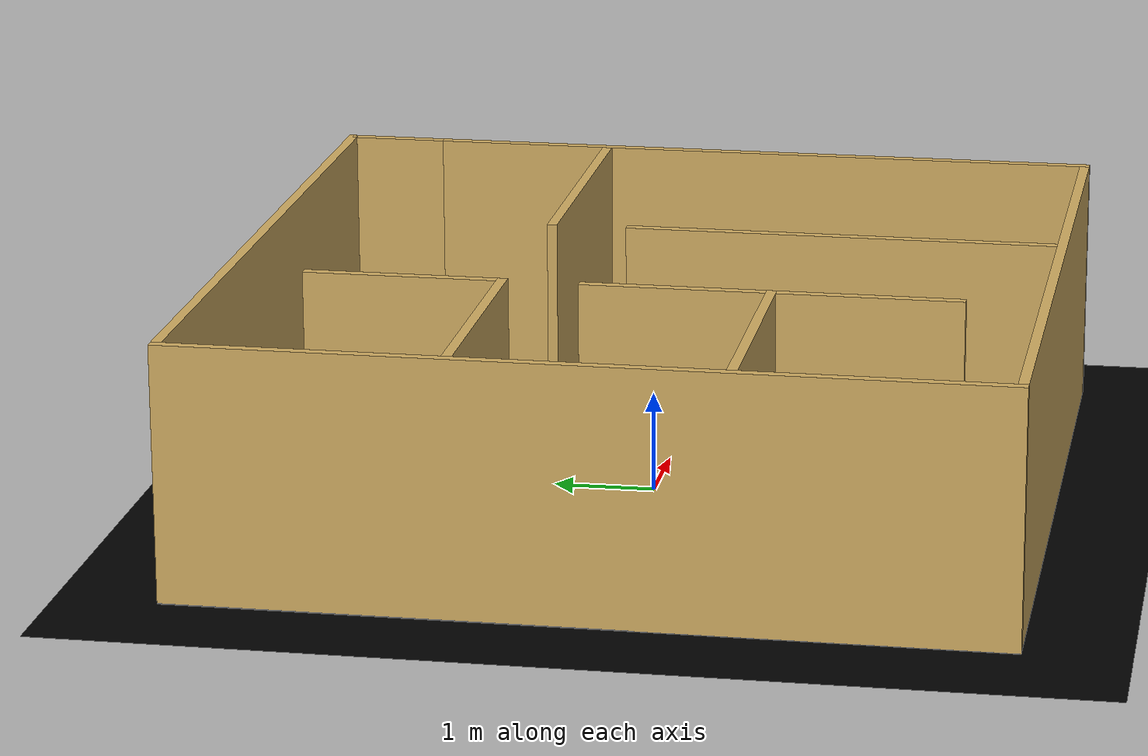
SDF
<sdf version="1.4">
 <world name="default">
  <physics name="1ms" type="ignored">
   <max_step_size>0.001</max_step_size>
   <real_time_factor>1.0</real_time_factor>
  </physics>
  <plugin filename="gz-sim-physics-system" name="gz::sim::systems::Physics"/>
  <plugin filename="gz-sim-user-commands-system" name="gz::sim::systems::UserCommands"/>
  <plugin filename="gz-sim-scene-broadcaster-system" name="gz::sim::systems::SceneBroadcaster"/>
  <plugin filename="gz-sim-sensors-system" name="gz::sim::systems::Sensors">
   <render_engine>ogre2</render_engine>
  </plugin>
  <scene><ambient>0.4 0.4 0.4 1</ambient><background>0.7 0.7 0.7 1</background><shadows>false</shadows></scene>
  <include><uri>model://office_floor</uri></include>
  <include><uri>model://office_model</uri></include>
  <include><name>goal_1</name><uri>model://goal_marker_5</uri><pose>2.81 -2.73 0.01 0 0 0</pose></include>
  <include><name>goal_2</name><uri>model://goal_marker_5</uri><pose>0 2.25 0.01 0 0 0</pose></include>
  <include><name>goal_3</name><uri>model://goal_marker_5</uri><pose>-3.40 -2.40 0.01 0 0 0</pose></include>
  <include><name>goal_4</name><uri>model://goal_marker_5</uri><pose>-2.05 -0.7 0.01 0 0 0</pose></include>
  <model name="cube_1">
   <static>true</static>
   <pose>3.95 3.45 1.25 0 0 0</pose>
   <link name="link">
    <collision name="collision"><geometry><box><size>1 0.1 1</size></box></geometry></collision>
    <visual name="visual">
     <geometry><box><size>0.1 1 2.5</size></box></geometry>
     <material><ambient>0.824 0.682 0.384 1</ambient><diffuse>0.824 0.682 0.384 1</diffuse></material>
    </visual>
   </link>
  </model>
 </world>
</sdf>

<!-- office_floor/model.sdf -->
<sdf version="1.5">
        <model name="puzzlebot_base">
            <static>true</static>
        <link name="link">
            <pose>0 0 0.0 0 0 1.5708 </pose>
            <collision name="collision">
                <geometry>
                <plane>
                    <normal>0 0 1</normal>
                    <size>10.0 10.0</size>
                </plane>
                </geometry>
                <surface>
                <contact>
                    <collide_bitmask>0xffff</collide_bitmask>
                    </contact>
                        <friction>
                        <ode>
                            <mu>100</mu>
                            <mu2>50</mu2>
                        </ode>
                        </friction>
                </surface>
            </collision>
            <visual name="visual">
                <pose>0 0 -0.001 0 0 0</pose>
                    <cast_shadows>false</cast_shadows>
                    <geometry>
                    <plane>
                        <normal>0 0 1</normal>
                        <size>10.0 10.0</size>
                    </plane>
                    </geometry>
                        <material>
                            <ambient>0 0 0 1</ambient>
                            <diffuse>0 0 0 1</diffuse>
                            <specular>0 0 0 1</specular>
                        </material>
                </visual>

                <visual name="mcr2_logo">
                <pose>0 0 0.0 0 0 0</pose>
                <cast_shadows>false</cast_shadows>
                <geometry>
                    <plane>
                    <normal>0 0 1</normal>
                    <size>8.0 8.0</size>
                    </plane>
                </geometry>
                        <material>
                            <ambient>1 1 1 1</ambient>
                            <diffuse>1 1 1 1</diffuse>
                            <specular>1 1 1 1</specular>
                            <pbr>
                                <metal>
                                <albedo_map>model://office_floor/materials/textures/backroom.jpg</albedo_map>
                                </metal>
                            </pbr>
                        </material>
                </visual>
            </link>

        </model>
    </sdf>

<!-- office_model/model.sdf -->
<sdf version="1.5">
  <model name='office'>

    <static>1</static>

    <link name='Wall_10'>
        <pose>-3.950 0.0 1.25 0.0 0.0 0.0</pose>

        <visual name='Wall_10_Visual'>
            <pose>0 0 0 0 -0 0</pose>
            <geometry>
                <box>
                    <size>0.1 8.0 2.5</size>
                </box>
            </geometry>
              <material>
                <ambient>0 0 0 1</ambient>
                <diffuse>0.824 0.682 0.384 1</diffuse>
                <specular>0 0 0 1</specular>
              </material>
        <cast_shadows>0</cast_shadows>
      </visual>

      <collision name='Wall_10_Collision'>
        <max_contacts>10</max_contacts>
        <pose>0 0 0.0 0 0 0</pose>
        <geometry>
          <box>
            <size>0.1 8.0 2.5</size>
          </box>
        </geometry>
        <surface>
          <friction>
            <ode>
              <mu>1</mu>
              <mu2>1</mu2>
              <fdir1>0 0 0</fdir1>
              <slip1>0</slip1>
              <slip2>0</slip2>
            </ode>
          </friction>
          <bounce>
            <restitution_coefficient>0</restitution_coefficient>
            <threshold>1e+06</threshold>
          </bounce>
          <contact>
            <collide_without_contact>0</collide_without_contact>
            <collide_without_contact_bitmask>1</collide_without_contact_bitmask>
            <collide_bitmask>1</collide_bitmask>
            <ode>
              <soft_cfm>0</soft_cfm>
              <soft_erp>0.2</soft_erp>
              <kp>1e+13</kp>
              <kd>1</kd>
              <max_vel>0.01</max_vel>
              <min_depth>0</min_depth>
            </ode>
            <bullet>
              <split_impulse>1</split_impulse>
              <split_impulse_penetration_threshold>-0.01</split_impulse_penetration_threshold>
              <soft_cfm>0</soft_cfm>
              <soft_erp>0.2</soft_erp>
              <kp>1e+13</kp>
              <kd>1</kd>
            </bullet>
          </contact>
        </surface>
      </collision>
    </link>

    <link name='Wall_20'>
          <pose>3.950 -0.525 1.25 0.0 0.0 0.0</pose>

          <visual name='Wall_20_Visual'>
              <pose>0 0 0 0 -0 0</pose>
              <geometry>
                  <box>
                      <size>0.1 6.950 2.5</size>
                  </box>
              </geometry>
              <material>
                <ambient>0 0 0 1</ambient>
                <diffuse>0.824 0.682 0.384 1</diffuse>
                <specular>0 0 0 1</specular>
              </material>
          <cast_shadows>0</cast_shadows>
        </visual>

        <collision name='Wall_20_Collision'>
          <max_contacts>10</max_contacts>
          <pose>0 0 0.0 0 0 0</pose>
          <geometry>
            <box>
              <size>0.1 6.950 2.5</size>
            </box>
          </geometry>
          <surface>
            <friction>
              <ode>
                <mu>1</mu>
                <mu2>1</mu2>
                <fdir1>0 0 0</fdir1>
                <slip1>0</slip1>
                <slip2>0</slip2>
              </ode>
            </friction>
            <bounce>
              <restitution_coefficient>0</restitution_coefficient>
              <threshold>1e+06</threshold>
            </bounce>
            <contact>
              <collide_without_contact>0</collide_without_contact>
              <collide_without_contact_bitmask>1</collide_without_contact_bitmask>
              <collide_bitmask>1</collide_bitmask>
              <ode>
                <soft_cfm>0</soft_cfm>
                <soft_erp>0.2</soft_erp>
                <kp>1e+13</kp>
                <kd>1</kd>
                <max_vel>0.01</max_vel>
                <min_depth>0</min_depth>
              </ode>
              <bullet>
                <split_impulse>1</split_impulse>
                <split_impulse_penetration_threshold>-0.01</split_impulse_penetration_threshold>
                <soft_cfm>0</soft_cfm>
                <soft_erp>0.2</soft_erp>
                <kp>1e+13</kp>
                <kd>1</kd>
              </bullet>
            </contact>
          </surface>
        </collision>
    </link>

    <link name='Wall_30'>
        <pose>0.0 -3.950 1.25 0.0 0.0 0.0</pose>

        <visual name='Wall_30_Visual'>
            <pose>0 0 0 0 -0 0</pose>
            <geometry>
                <box>
                    <size>7.8 0.1 2.5</size>
                </box>
            </geometry>
              <material>
                <ambient>0 0 0 1</ambient>
                <diffuse>0.824 0.682 0.384 1</diffuse>
                <specular>0 0 0 1</specular>
              </material>
        <cast_shadows>0</cast_shadows>
      </visual>

      <collision name='Wall_30_Collision'>
        <max_contacts>10</max_contacts>
        <pose>0 0 0.0 0 0 0</pose>
        <geometry>
          <box>
            <size>7.8 0.1 2.5</size>
          </box>
        </geometry>
        <surface>
          <friction>
            <ode>
              <mu>1</mu>
              <mu2>1</mu2>
              <fdir1>0 0 0</fdir1>
              <slip1>0</slip1>
              <slip2>0</slip2>
            </ode>
          </friction>
          <bounce>
            <restitution_coefficient>0</restitution_coefficient>
            <threshold>1e+06</threshold>
          </bounce>
          <contact>
            <collide_without_contact>0</collide_without_contact>
            <collide_without_contact_bitmask>1</collide_without_contact_bitmask>
            <collide_bitmask>1</collide_bitmask>
            <ode>
              <soft_cfm>0</soft_cfm>
              <soft_erp>0.2</soft_erp>
              <kp>1e+13</kp>
              <kd>1</kd>
              <max_vel>0.01</max_vel>
              <min_depth>0</min_depth>
            </ode>
            <bullet>
              <split_impulse>1</split_impulse>
              <split_impulse_penetration_threshold>-0.01</split_impulse_penetration_threshold>
              <soft_cfm>0</soft_cfm>
              <soft_erp>0.2</soft_erp>
              <kp>1e+13</kp>
              <kd>1</kd>
            </bullet>
          </contact>
        </surface>
      </collision>
    </link>

    <link name='Wall_40'>
        <pose>0.05 3.950 1.25 0.0 0.0 0.0</pose>

        <visual name='Wall_40_Visual'>
            <pose>0 0 0 0 -0 0</pose>
            <geometry>
                <box>
                    <size>7.9 0.1 2.5</size>
                </box>
            </geometry>
              <material>
                <ambient>0 0 0 1</ambient>
                <diffuse>0.824 0.682 0.384 1</diffuse>
                <specular>0 0 0 1</specular>
              </material>
        <cast_shadows>0</cast_shadows>
      </visual>

      <collision name='Wall_40_Collision'>
        <max_contacts>10</max_contacts>
        <pose>0 0 0.0 0 0 0</pose>
        <geometry>
          <box>
            <size>7.9 0.1 2.5</size>
          </box>
        </geometry>
        <surface>
          <friction>
            <ode>
              <mu>1</mu>
              <mu2>1</mu2>
              <fdir1>0 0 0</fdir1>
              <slip1>0</slip1>
              <slip2>0</slip2>
            </ode>
          </friction>
          <bounce>
            <restitution_coefficient>0</restitution_coefficient>
            <threshold>1e+06</threshold>
          </bounce>
          <contact>
            <collide_without_contact>0</collide_without_contact>
            <collide_without_contact_bitmask>1</collide_without_contact_bitmask>
            <collide_bitmask>1</collide_bitmask>
            <ode>
              <soft_cfm>0</soft_cfm>
              <soft_erp>0.2</soft_erp>
              <kp>1e+13</kp>
              <kd>1</kd>
              <max_vel>0.01</max_vel>
              <min_depth>0</min_depth>
            </ode>
            <bullet>
              <split_impulse>1</split_impulse>
              <split_impulse_penetration_threshold>-0.01</split_impulse_penetration_threshold>
              <soft_cfm>0</soft_cfm>
              <soft_erp>0.2</soft_erp>
              <kp>1e+13</kp>
              <kd>1</kd>
            </bullet>
          </contact>
        </surface>
      </collision>
    </link>

    <link name='Wall_50'>
        <pose>-1.35 -2.3 1.25 0.0 0.0 0.0</pose>

        <visual name='Wall_50_Visual'>
            <pose>0 0 0 0 -0 0</pose>
            <geometry>
                <box>
                    <size>0.1 1.8 2.5</size>
                </box>
            </geometry>
              <material>
                <ambient>0 0 0 1</ambient>
                <diffuse>0.824 0.682 0.384 1</diffuse>
                <specular>0 0 0 1</specular>
              </material>
        <cast_shadows>0</cast_shadows>
      </visual>

      <collision name='Wall_50_Collision'>
        <max_contacts>10</max_contacts>
        <pose>0 0 0.0 0 0 0</pose>
        <geometry>
          <box>
            <size>0.1 1.8 2.5</size>
          </box>
        </geometry>
        <surface>
          <friction>
            <ode>
              <mu>1</mu>
              <mu2>1</mu2>
              <fdir1>0 0 0</fdir1>
              <slip1>0</slip1>
              <slip2>0</slip2>
            </ode>
          </friction>
          <bounce>
            <restitution_coefficient>0</restitution_coefficient>
            <threshold>1e+06</threshold>
          </bounce>
          <contact>
            <collide_without_contact>0</collide_without_contact>
            <collide_without_contact_bitmask>1</collide_without_contact_bitmask>
            <collide_bitmask>1</collide_bitmask>
            <ode>
              <soft_cfm>0</soft_cfm>
              <soft_erp>0.2</soft_erp>
              <kp>1e+13</kp>
              <kd>1</kd>
              <max_vel>0.01</max_vel>
              <min_depth>0</min_depth>
            </ode>
            <bullet>
              <split_impulse>1</split_impulse>
              <split_impulse_penetration_threshold>-0.01</split_impulse_penetration_threshold>
              <soft_cfm>0</soft_cfm>
              <soft_erp>0.2</soft_erp>
              <kp>1e+13</kp>
              <kd>1</kd>
            </bullet>
          </contact>
        </surface>
      </collision>
    </link>

    <link name='Wall_60'>
        <pose>0.75 -1.75 1.25 0.0 0.0 0.0</pose>

        <visual name='Wall_60_Visual'>
            <pose>0 0 0 0 -0 0</pose>
            <geometry>
                <box>
                    <size>0.1 4.3 2.5</size>
                </box>
            </geometry>
              <material>
                <ambient>0 0 0 1</ambient>
                <diffuse>0.824 0.682 0.384 1</diffuse>
                <specular>0 0 0 1</specular>
              </material>
        <cast_shadows>0</cast_shadows>
      </visual>

      <collision name='Wall_60_Collision'>
        <max_contacts>10</max_contacts>
        <pose>0 0 0.0 0 0 0</pose>
        <geometry>
          <box>
            <size>0.1 4.3 2.5</size>
          </box>
        </geometry>
        <surface>
          <friction>
            <ode>
              <mu>1</mu>
              <mu2>1</mu2>
              <fdir1>0 0 0</fdir1>
              <slip1>0</slip1>
              <slip2>0</slip2>
            </ode>
          </friction>
          <bounce>
            <restitution_coefficient>0</restitution_coefficient>
            <threshold>1e+06</threshold>
          </bounce>
          <contact>
            <collide_without_contact>0</collide_without_contact>
            <collide_without_contact_bitmask>1</collide_without_contact_bitmask>
            <collide_bitmask>1</collide_bitmask>
            <ode>
              <soft_cfm>0</soft_cfm>
              <soft_erp>0.2</soft_erp>
              <kp>1e+13</kp>
              <kd>1</kd>
              <max_vel>0.01</max_vel>
              <min_depth>0</min_depth>
            </ode>
            <bullet>
              <split_impulse>1</split_impulse>
              <split_impulse_penetration_threshold>-0.01</split_impulse_penetration_threshold>
              <soft_cfm>0</soft_cfm>
              <soft_erp>0.2</soft_erp>
              <kp>1e+13</kp>
              <kd>1</kd>
            </bullet>
          </contact>
        </surface>
      </collision>
    </link>

    <link name='Wall_70'>
        <pose>-2.6 -1.35 1.25 0.0 0.0 0.0</pose>

        <visual name='Wall_70_Visual'>
            <pose>0 0 0 0 -0 0</pose>
            <geometry>
                <box>
                    <size>2.6 0.1 2.5</size>
                </box>
            </geometry>
              <material>
                <ambient>0 0 0 1</ambient>
                <diffuse>0.824 0.682 0.384 1</diffuse>
                <specular>0 0 0 1</specular>
              </material>
        <cast_shadows>0</cast_shadows>
      </visual>

      <collision name='Wall_70_Collision'>
        <max_contacts>10</max_contacts>
        <pose>0 0 0.0 0 0 0</pose>
        <geometry>
          <box>
            <size>2.6 0.1 2.5</size>
          </box>
        </geometry>
        <surface>
          <friction>
            <ode>
              <mu>1</mu>
              <mu2>1</mu2>
              <fdir1>0 0 0</fdir1>
              <slip1>0</slip1>
              <slip2>0</slip2>
            </ode>
          </friction>
          <bounce>
            <restitution_coefficient>0</restitution_coefficient>
            <threshold>1e+06</threshold>
          </bounce>
          <contact>
            <collide_without_contact>0</collide_without_contact>
            <collide_without_contact_bitmask>1</collide_without_contact_bitmask>
            <collide_bitmask>1</collide_bitmask>
            <ode>
              <soft_cfm>0</soft_cfm>
              <soft_erp>0.2</soft_erp>
              <kp>1e+13</kp>
              <kd>1</kd>
              <max_vel>0.01</max_vel>
              <min_depth>0</min_depth>
            </ode>
            <bullet>
              <split_impulse>1</split_impulse>
              <split_impulse_penetration_threshold>-0.01</split_impulse_penetration_threshold>
              <soft_cfm>0</soft_cfm>
              <soft_erp>0.2</soft_erp>
              <kp>1e+13</kp>
              <kd>1</kd>
            </bullet>
          </contact>
        </surface>
      </collision>
    </link>

    <link name='Wall_80'>
        <pose>-1.35 -0.4 1.25 0.0 0.0 0.0</pose>

        <visual name='Wall_80_Visual'>
            <pose>0 0 0 0 -0 0</pose>
            <geometry>
                <box>
                    <size>0.1 1.8 2.5</size>
                </box>
            </geometry>
              <material>
                <ambient>0 0 0 1</ambient>
                <diffuse>0.824 0.682 0.384 1</diffuse>
                <specular>0 0 0 1</specular>
              </material>
        <cast_shadows>0</cast_shadows>
      </visual>

      <collision name='Wall_80_Collision'>
        <max_contacts>10</max_contacts>
        <pose>0 0 0.0 0 0 0</pose>
        <geometry>
          <box>
            <size>0.1 1.8 2.5</size>
          </box>
        </geometry>
        <surface>
          <friction>
            <ode>
              <mu>1</mu>
              <mu2>1</mu2>
              <fdir1>0 0 0</fdir1>
              <slip1>0</slip1>
              <slip2>0</slip2>
            </ode>
          </friction>
          <bounce>
            <restitution_coefficient>0</restitution_coefficient>
            <threshold>1e+06</threshold>
          </bounce>
          <contact>
            <collide_without_contact>0</collide_without_contact>
            <collide_without_contact_bitmask>1</collide_without_contact_bitmask>
            <collide_bitmask>1</collide_bitmask>
            <ode>
              <soft_cfm>0</soft_cfm>
              <soft_erp>0.2</soft_erp>
              <kp>1e+13</kp>
              <kd>1</kd>
              <max_vel>0.01</max_vel>
              <min_depth>0</min_depth>
            </ode>
            <bullet>
              <split_impulse>1</split_impulse>
              <split_impulse_penetration_threshold>-0.01</split_impulse_penetration_threshold>
              <soft_cfm>0</soft_cfm>
              <soft_erp>0.2</soft_erp>
              <kp>1e+13</kp>
              <kd>1</kd>
            </bullet>
          </contact>
        </surface>
      </collision>
    </link>

    <link name='Wall_90'>
        <pose>2.3 1.15 1.25 0.0 0.0 0.0</pose>

        <visual name='Wall_90_Visual'>
            <pose>0 0 0 0 -0 0</pose>
            <geometry>
                <box>
                    <size>3.2 0.1 2.5</size>
                </box>
            </geometry>
              <material>
                <ambient>0 0 0 1</ambient>
                <diffuse>0.824 0.682 0.384 1</diffuse>
                <specular>0 0 0 1</specular>
              </material>
        <cast_shadows>0</cast_shadows>
      </visual>

      <collision name='Wall_90_Collision'>
        <max_contacts>10</max_contacts>
        <pose>0 0 0.0 0 0 0</pose>
        <geometry>
          <box>
            <size>3.2 0.1 2.5</size>
          </box>
        </geometry>
        <surface>
          <friction>
            <ode>
              <mu>1</mu>
              <mu2>1</mu2>
              <fdir1>0 0 0</fdir1>
              <slip1>0</slip1>
              <slip2>0</slip2>
            </ode>
          </friction>
          <bounce>
            <restitution_coefficient>0</restitution_coefficient>
            <threshold>1e+06</threshold>
          </bounce>
          <contact>
            <collide_without_contact>0</collide_without_contact>
            <collide_without_contact_bitmask>1</collide_without_contact_bitmask>
            <collide_bitmask>1</collide_bitmask>
            <ode>
              <soft_cfm>0</soft_cfm>
              <soft_erp>0.2</soft_erp>
              <kp>1e+13</kp>
              <kd>1</kd>
              <max_vel>0.01</max_vel>
              <min_depth>0</min_depth>
            </ode>
            <bullet>
              <split_impulse>1</split_impulse>
              <split_impulse_penetration_threshold>-0.01</split_impulse_penetration_threshold>
              <soft_cfm>0</soft_cfm>
              <soft_erp>0.2</soft_erp>
              <kp>1e+13</kp>
              <kd>1</kd>
            </bullet>
          </contact>
        </surface>
      </collision>
    </link>

    <link name='Wall_100'>
        <pose>-2.6 1.25 1.25 0.0 0.0 0.0</pose>

        <visual name='Wall_100_Visual'>
            <pose>0 0 0 0 -0 0</pose>
            <geometry>
                <box>
                    <size>2.6 0.1 2.5</size>
                </box>
            </geometry>
              <material>
                <ambient>0 0 0 1</ambient>
                <diffuse>0.824 0.682 0.384 1</diffuse>
                <specular>0 0 0 1</specular>
              </material>
        <cast_shadows>0</cast_shadows>
      </visual>

      <collision name='Wall_100_Collision'>
        <max_contacts>10</max_contacts>
        <pose>0 0 0.0 0 0 0</pose>
        <geometry>
          <box>
            <size>2.6 0.1 2.5</size>
          </box>
        </geometry>
        <surface>
          <friction>
            <ode>
              <mu>1</mu>
              <mu2>1</mu2>
              <fdir1>0 0 0</fdir1>
              <slip1>0</slip1>
              <slip2>0</slip2>
            </ode>
          </friction>
          <bounce>
            <restitution_coefficient>0</restitution_coefficient>
            <threshold>1e+06</threshold>
          </bounce>
          <contact>
            <collide_without_contact>0</collide_without_contact>
            <collide_without_contact_bitmask>1</collide_without_contact_bitmask>
            <collide_bitmask>1</collide_bitmask>
            <ode>
              <soft_cfm>0</soft_cfm>
              <soft_erp>0.2</soft_erp>
              <kp>1e+13</kp>
              <kd>1</kd>
              <max_vel>0.01</max_vel>
              <min_depth>0</min_depth>
            </ode>
            <bullet>
              <split_impulse>1</split_impulse>
              <split_impulse_penetration_threshold>-0.01</split_impulse_penetration_threshold>
              <soft_cfm>0</soft_cfm>
              <soft_erp>0.2</soft_erp>
              <kp>1e+13</kp>
              <kd>1</kd>
            </bullet>
          </contact>
        </surface>
      </collision>
    </link>

    <link name='Wall_110'>
        <pose>-1.35 2.25 1.25 0.0 0.0 0.0</pose>

        <visual name='Wall_110_Visual'>
            <pose>0 0 0 0 -0 0</pose>
            <geometry>
                <box>
                    <size>0.1 1.9 2.5</size>
                </box>
            </geometry>
              <material>
                <ambient>0 0 0 1</ambient>
                <diffuse>0.824 0.682 0.384 1</diffuse>
                <specular>0 0 0 1</specular>
              </material>
        <cast_shadows>0</cast_shadows>
      </visual>

      <collision name='Wall_110_Collision'>
        <max_contacts>10</max_contacts>
        <pose>0 0 0.0 0 0 0</pose>
        <geometry>
          <box>
            <size>0.1 1.9 2.5</size>
          </box>
        </geometry>
        <surface>
          <friction>
            <ode>
              <mu>1</mu>
              <mu2>1</mu2>
              <fdir1>0 0 0</fdir1>
              <slip1>0</slip1>
              <slip2>0</slip2>
            </ode>
          </friction>
          <bounce>
            <restitution_coefficient>0</restitution_coefficient>
            <threshold>1e+06</threshold>
          </bounce>
          <contact>
            <collide_without_contact>0</collide_without_contact>
            <collide_without_contact_bitmask>1</collide_without_contact_bitmask>
            <collide_bitmask>1</collide_bitmask>
            <ode>
              <soft_cfm>0</soft_cfm>
              <soft_erp>0.2</soft_erp>
              <kp>1e+13</kp>
              <kd>1</kd>
              <max_vel>0.01</max_vel>
              <min_depth>0</min_depth>
            </ode>
            <bullet>
              <split_impulse>1</split_impulse>
              <split_impulse_penetration_threshold>-0.01</split_impulse_penetration_threshold>
              <soft_cfm>0</soft_cfm>
              <soft_erp>0.2</soft_erp>
              <kp>1e+13</kp>
              <kd>1</kd>
            </bullet>
          </contact>
        </surface>
      </collision>
    </link>

  </model>
  </sdf>

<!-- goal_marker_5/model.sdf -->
<sdf version="1.5">
        <model name="goal_marker_5">
            <static>true</static>
                <link name="link">
                    <pose>0 0 0 0 0 0</pose>
                    <visual name="visual">
                        <cast_shadows>false</cast_shadows>
                        <geometry>
                            <plane>
                                    <normal>0 0 1</normal>
                                    <size>0.4 0.4</size>
                            </plane>
                        </geometry>
                        <material>
                            <ambient>1 1 1 1</ambient>
                            <diffuse>1 1 1 1</diffuse>
                            <specular>1 1 1 1</specular>
                            <pbr>
                                <metal>
                                <albedo_map>model://goal_marker_5/materials/textures/meta.jpeg</albedo_map>
                                </metal>
                            </pbr>
                        </material>
                    </visual>
                </link>
        </model>
    </sdf>
